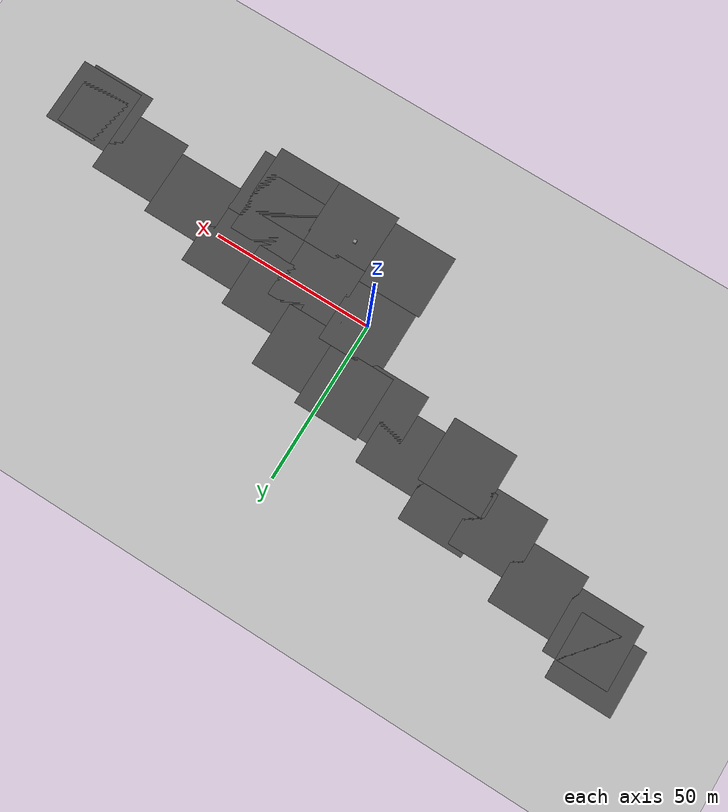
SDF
<sdf version="1.6">
 <world name="timpajdsparse">
  <light name="sun" type="directional">
   <pose>0 0 10 0 -0 0</pose>
   <diffuse>0.8 0.8 0.8 1</diffuse>
   <specular>0.2 0.2 0.2 1</specular>
   <attenuation>
    <range>1000</range>
    <constant>0.9</constant>
    <linear>0.01</linear>
    <quadratic>0.001</quadratic>
   </attenuation>
   <direction>-0.5 0.1 -0.9</direction>
  </light>
  <model name="apriltag">
   <static>0</static>
   <link name="link">
    <inertial>
     <mass>20</mass>
     <inertia><ixx>1</ixx><ixy>0</ixy><ixz>0</ixz><iyy>1</iyy><iyz>0</iyz><izz>1</izz></inertia>
    </inertial>
    <collision name="collision">
     <geometry><box><size>0.3 0.3 0.01</size></box></geometry>
     <surface><friction><ode><mu>100</mu><mu2>50</mu2></ode></friction></surface>
    </collision>
    <visual name="visual">
     <cast_shadows>0</cast_shadows>
     <geometry><box><size>0.3 0.3 0.01</size></box></geometry>
     <material><script><name>AprilTag/Image</name><uri>__default__</uri></script></material>
    </visual>
   </link>
   <pose>7 3 0.055 0 -0 0</pose>
  </model>
  <model name="ground_plane">
   <static>1</static>
   <link name="link">
    <collision name="collision">
     <geometry><plane><normal>0 0 1</normal><size>100 100</size></plane></geometry>
     <surface><friction><ode><mu>100</mu><mu2>50</mu2></ode></friction></surface>
    </collision>
    <visual name="visual">
     <cast_shadows>0</cast_shadows>
     <geometry><plane><normal>0 0 1</normal><size>100 100</size></plane></geometry>
     <material>
      <script><uri>file://media/materials/scripts/gazebo.material</uri><name>Gazebo/Grey</name></script>
     </material>
    </visual>
   </link>
  </model>
  <model name="asphalt_plane">
   <static>1</static>
   <link name="link">
    <collision name="collision"><geometry><box><size>20 20 0.1</size></box></geometry></collision>
    <visual name="visual">
     <cast_shadows>0</cast_shadows>
     <geometry><box><size>20 20 0.1</size></box></geometry>
     <material>
      <script>
       <uri>model://asphalt_plane/materials/scripts</uri>
       <uri>model://asphalt_plane/materials/textures</uri>
       <name>vrc/asphalt</name>
      </script>
     </material>
    </visual>
   </link>
  </model>
  <physics name="default_physics" default="0" type="ode">
   <ode>
    <solver>
     <type>quick</type>
     <iters>10</iters>
     <sor>1.3</sor>
     <use_dynamic_moi_rescaling>0</use_dynamic_moi_rescaling>
    </solver>
    <constraints>
     <cfm>0</cfm>
     <erp>0.2</erp>
     <contact_max_correcting_vel>100</contact_max_correcting_vel>
     <contact_surface_layer>0.001</contact_surface_layer>
    </constraints>
   </ode>
   <max_step_size>0.002</max_step_size>
   <real_time_factor>1</real_time_factor>
   <real_time_update_rate>500</real_time_update_rate>
  </physics>
  <scene><ambient>0.4 0.4 0.4 1</ambient><background>0.7 0.7 0.7 1</background><shadows>1</shadows></scene>
  <spherical_coordinates>
   <surface_model>EARTH_WGS84</surface_model>
   <latitude_deg>0</latitude_deg>
   <longitude_deg>0</longitude_deg>
   <elevation>0</elevation>
   <heading_deg>0</heading_deg>
  </spherical_coordinates>
  <model name="asphalt_plane_0">
   <static>1</static>
   <link name="link">
    <collision name="collision"><geometry><box><size>20 20 0.1</size></box></geometry></collision>
    <visual name="visual">
     <cast_shadows>0</cast_shadows>
     <geometry><box><size>20 20 0.1</size></box></geometry>
     <material>
      <script>
       <uri>model://asphalt_plane/materials/scripts</uri>
       <uri>model://asphalt_plane/materials/textures</uri>
       <name>vrc/asphalt</name>
      </script>
     </material>
    </visual>
   </link>
   <pose>-44 19 0 0 -0 0</pose>
  </model>
  <model name="asphalt_plane_0_0">
   <static>1</static>
   <link name="link">
    <collision name="collision"><geometry><box><size>20 20 0.1</size></box></geometry></collision>
    <visual name="visual">
     <cast_shadows>0</cast_shadows>
     <geometry><box><size>20 20 0.1</size></box></geometry>
     <material>
      <script>
       <uri>model://asphalt_plane/materials/scripts</uri>
       <uri>model://asphalt_plane/materials/textures</uri>
       <name>vrc/asphalt</name>
      </script>
     </material>
    </visual>
   </link>
   <pose>-96 40.5064 0 0 -0 0</pose>
  </model>
  <model name="asphalt_plane_1">
   <static>1</static>
   <link name="link">
    <collision name="collision"><geometry><box><size>20 20 0.1</size></box></geometry></collision>
    <visual name="visual">
     <cast_shadows>0</cast_shadows>
     <geometry><box><size>20 20 0.1</size></box></geometry>
     <material>
      <script>
       <uri>model://asphalt_plane/materials/scripts</uri>
       <uri>model://asphalt_plane/materials/textures</uri>
       <name>vrc/asphalt</name>
      </script>
     </material>
    </visual>
   </link>
   <pose>-100 46 0 0 -0 0</pose>
  </model>
  <model name="asphalt_plane_2">
   <static>1</static>
   <link name="link">
    <collision name="collision"><geometry><box><size>20 20 0.1</size></box></geometry></collision>
    <visual name="visual">
     <cast_shadows>0</cast_shadows>
     <geometry><box><size>20 20 0.1</size></box></geometry>
     <material>
      <script>
       <uri>model://asphalt_plane/materials/scripts</uri>
       <uri>model://asphalt_plane/materials/textures</uri>
       <name>vrc/asphalt</name>
      </script>
     </material>
    </visual>
   </link>
   <pose>-4 19 0 0 -0 0</pose>
  </model>
  <model name="asphalt_plane_3">
   <static>1</static>
   <link name="link">
    <collision name="collision"><geometry><box><size>20 20 0.1</size></box></geometry></collision>
    <visual name="visual">
     <cast_shadows>0</cast_shadows>
     <geometry><box><size>20 20 0.1</size></box></geometry>
     <material>
      <script>
       <uri>model://asphalt_plane/materials/scripts</uri>
       <uri>model://asphalt_plane/materials/textures</uri>
       <name>vrc/asphalt</name>
      </script>
     </material>
    </visual>
   </link>
   <pose>28.4839 6 0 0 -0 0</pose>
  </model>
  <model name="asphalt_plane_4">
   <static>1</static>
   <link name="link">
    <collision name="collision"><geometry><box><size>20 20 0.1</size></box></geometry></collision>
    <visual name="visual">
     <cast_shadows>0</cast_shadows>
     <geometry><box><size>20 20 0.1</size></box></geometry>
     <material>
      <script>
       <uri>model://asphalt_plane/materials/scripts</uri>
       <uri>model://asphalt_plane/materials/textures</uri>
       <name>vrc/asphalt</name>
      </script>
     </material>
    </visual>
   </link>
   <pose>102 -13.5911 0 0 -0 0</pose>
  </model>
  <model name="asphalt_plane_5">
   <static>1</static>
   <link name="link">
    <collision name="collision"><geometry><box><size>20 20 0.1</size></box></geometry></collision>
    <visual name="visual">
     <cast_shadows>0</cast_shadows>
     <geometry><box><size>20 20 0.1</size></box></geometry>
     <material>
      <script>
       <uri>model://asphalt_plane/materials/scripts</uri>
       <uri>model://asphalt_plane/materials/textures</uri>
       <name>vrc/asphalt</name>
      </script>
     </material>
    </visual>
   </link>
   <pose>98.5364 -14.4762 0 0 -0 0</pose>
  </model>
  <model name="unit_box_1">
   <pose>15.9999 -19 0.550001 5e-06 1e-06 -9.1e-05</pose>
   <link name="link">
    <inertial>
     <mass>1</mass>
     <inertia>
      <ixx>0.166667</ixx>
      <ixy>0</ixy>
      <ixz>0</ixz>
      <iyy>0.166667</iyy>
      <iyz>0</iyz>
      <izz>0.166667</izz>
     </inertia>
    </inertial>
    <collision name="collision"><geometry><box><size>1 1 1</size></box></geometry></collision>
    <visual name="visual">
     <geometry><box><size>1 1 1</size></box></geometry>
     <material>
      <script><name>Gazebo/Grey</name><uri>file://media/materials/scripts/gazebo.material</uri></script>
     </material>
    </visual>
   </link>
  </model>
  <model name="asphalt_plane_6">
   <static>1</static>
   <link name="link">
    <collision name="collision"><geometry><box><size>20 20 0.1</size></box></geometry></collision>
    <visual name="visual">
     <cast_shadows>0</cast_shadows>
     <geometry><box><size>20 20 0.1</size></box></geometry>
     <material>
      <script>
       <uri>model://asphalt_plane/materials/scripts</uri>
       <uri>model://asphalt_plane/materials/textures</uri>
       <name>vrc/asphalt</name>
      </script>
     </material>
    </visual>
   </link>
   <pose>-77 37 0 0 -0 0</pose>
  </model>
  <model name="asphalt_plane_0_1">
   <static>1</static>
   <link name="link">
    <collision name="collision"><geometry><box><size>20 20 0.1</size></box></geometry></collision>
    <visual name="visual">
     <cast_shadows>0</cast_shadows>
     <geometry><box><size>20 20 0.1</size></box></geometry>
     <material>
      <script>
       <uri>model://asphalt_plane/materials/scripts</uri>
       <uri>model://asphalt_plane/materials/textures</uri>
       <name>vrc/asphalt</name>
      </script>
     </material>
    </visual>
   </link>
   <pose>-60 29.5676 0 0 -0 0</pose>
  </model>
  <model name="asphalt_plane_1_0">
   <static>1</static>
   <link name="link">
    <collision name="collision"><geometry><box><size>20 20 0.1</size></box></geometry></collision>
    <visual name="visual">
     <cast_shadows>0</cast_shadows>
     <geometry><box><size>20 20 0.1</size></box></geometry>
     <material>
      <script>
       <uri>model://asphalt_plane/materials/scripts</uri>
       <uri>model://asphalt_plane/materials/textures</uri>
       <name>vrc/asphalt</name>
      </script>
     </material>
    </visual>
   </link>
   <pose>-27 24 0 0 -0 0</pose>
  </model>
  <model name="asphalt_plane_2_0">
   <static>1</static>
   <link name="link">
    <collision name="collision"><geometry><box><size>20 20 0.1</size></box></geometry></collision>
    <visual name="visual">
     <cast_shadows>0</cast_shadows>
     <geometry><box><size>20 20 0.1</size></box></geometry>
     <material>
      <script>
       <uri>model://asphalt_plane/materials/scripts</uri>
       <uri>model://asphalt_plane/materials/textures</uri>
       <name>vrc/asphalt</name>
      </script>
     </material>
    </visual>
   </link>
   <pose>-45 31 0 0 -0 0</pose>
  </model>
  <model name="asphalt_plane_3_0">
   <static>1</static>
   <link name="link">
    <collision name="collision"><geometry><box><size>20 20 0.1</size></box></geometry></collision>
    <visual name="visual">
     <cast_shadows>0</cast_shadows>
     <geometry><box><size>20 20 0.1</size></box></geometry>
     <material>
      <script>
       <uri>model://asphalt_plane/materials/scripts</uri>
       <uri>model://asphalt_plane/materials/textures</uri>
       <name>vrc/asphalt</name>
      </script>
     </material>
    </visual>
   </link>
   <pose>-15 18 0 0 -0 0</pose>
  </model>
  <model name="asphalt_plane_4_0">
   <static>1</static>
   <link name="link">
    <collision name="collision"><geometry><box><size>20 20 0.1</size></box></geometry></collision>
    <visual name="visual">
     <cast_shadows>0</cast_shadows>
     <geometry><box><size>20 20 0.1</size></box></geometry>
     <material>
      <script>
       <uri>model://asphalt_plane/materials/scripts</uri>
       <uri>model://asphalt_plane/materials/textures</uri>
       <name>vrc/asphalt</name>
      </script>
     </material>
    </visual>
   </link>
   <pose>12 16 0 0 -0 0</pose>
  </model>
  <model name="asphalt_plane_5_0">
   <static>1</static>
   <link name="link">
    <collision name="collision"><geometry><box><size>20 20 0.1</size></box></geometry></collision>
    <visual name="visual">
     <cast_shadows>0</cast_shadows>
     <geometry><box><size>20 20 0.1</size></box></geometry>
     <material>
      <script>
       <uri>model://asphalt_plane/materials/scripts</uri>
       <uri>model://asphalt_plane/materials/textures</uri>
       <name>vrc/asphalt</name>
      </script>
     </material>
    </visual>
   </link>
   <pose>45 1.42978 0 0 -0 0</pose>
  </model>
  <model name="asphalt_plane_6_0">
   <static>1</static>
   <link name="link">
    <collision name="collision"><geometry><box><size>20 20 0.1</size></box></geometry></collision>
    <visual name="visual">
     <cast_shadows>0</cast_shadows>
     <geometry><box><size>20 20 0.1</size></box></geometry>
     <material>
      <script>
       <uri>model://asphalt_plane/materials/scripts</uri>
       <uri>model://asphalt_plane/materials/textures</uri>
       <name>vrc/asphalt</name>
      </script>
     </material>
    </visual>
   </link>
   <pose>62 -5 0 0 -0 0</pose>
  </model>
  <model name="asphalt_plane_7">
   <static>1</static>
   <link name="link">
    <collision name="collision"><geometry><box><size>20 20 0.1</size></box></geometry></collision>
    <visual name="visual">
     <cast_shadows>0</cast_shadows>
     <geometry><box><size>20 20 0.1</size></box></geometry>
     <material>
      <script>
       <uri>model://asphalt_plane/materials/scripts</uri>
       <uri>model://asphalt_plane/materials/textures</uri>
       <name>vrc/asphalt</name>
      </script>
     </material>
    </visual>
   </link>
   <pose>82 -8 0 0 -0 0</pose>
  </model>
  <gravity>0 0 -9.8066</gravity>
  <magnetic_field>6e-06 2.3e-05 -4.2e-05</magnetic_field>
  <atmosphere type="adiabatic"/>
  <model name="asphalt_plane_8">
   <static>1</static>
   <link name="link">
    <collision name="collision"><geometry><box><size>20 20 0.1</size></box></geometry></collision>
    <visual name="visual">
     <cast_shadows>0</cast_shadows>
     <geometry><box><size>20 20 0.1</size></box></geometry>
     <material>
      <script>
       <uri>model://asphalt_plane/materials/scripts</uri>
       <uri>model://asphalt_plane/materials/textures</uri>
       <name>vrc/asphalt</name>
      </script>
     </material>
    </visual>
   </link>
   <pose>18.9775 -3.17568 0 0 -0 0</pose>
  </model>
  <model name="asphalt_plane_9">
   <static>1</static>
   <link name="link">
    <collision name="collision"><geometry><box><size>20 20 0.1</size></box></geometry></collision>
    <visual name="visual">
     <cast_shadows>0</cast_shadows>
     <geometry><box><size>20 20 0.1</size></box></geometry>
     <material>
      <script>
       <uri>model://asphalt_plane/materials/scripts</uri>
       <uri>model://asphalt_plane/materials/textures</uri>
       <name>vrc/asphalt</name>
      </script>
     </material>
    </visual>
   </link>
   <pose>-0.935219 -19.8832 0 0 -0 0</pose>
  </model>
  <model name="asphalt_plane_10">
   <static>1</static>
   <link name="link">
    <collision name="collision"><geometry><box><size>20 20 0.1</size></box></geometry></collision>
    <visual name="visual">
     <cast_shadows>0</cast_shadows>
     <geometry><box><size>20 20 0.1</size></box></geometry>
     <material>
      <script>
       <uri>model://asphalt_plane/materials/scripts</uri>
       <uri>model://asphalt_plane/materials/textures</uri>
       <name>vrc/asphalt</name>
      </script>
     </material>
    </visual>
   </link>
   <pose>18.9651 -21.6975 0 0 -0 0</pose>
  </model>
  <model name="asphalt_plane_11">
   <static>1</static>
   <link name="link">
    <collision name="collision"><geometry><box><size>20 20 0.1</size></box></geometry></collision>
    <visual name="visual">
     <cast_shadows>0</cast_shadows>
     <geometry><box><size>20 20 0.1</size></box></geometry>
     <material>
      <script>
       <uri>model://asphalt_plane/materials/scripts</uri>
       <uri>model://asphalt_plane/materials/textures</uri>
       <name>vrc/asphalt</name>
      </script>
     </material>
    </visual>
   </link>
   <pose>38.3035 -13.8622 0 0 -0 0</pose>
  </model>
  <model name="asphalt_plane_12">
   <static>1</static>
   <link name="link">
    <collision name="collision"><geometry><box><size>20 20 0.1</size></box></geometry></collision>
    <visual name="visual">
     <cast_shadows>0</cast_shadows>
     <geometry><box><size>20 20 0.1</size></box></geometry>
     <material>
      <script>
       <uri>model://asphalt_plane/materials/scripts</uri>
       <uri>model://asphalt_plane/materials/textures</uri>
       <name>vrc/asphalt</name>
      </script>
     </material>
    </visual>
   </link>
   <pose>42.2319 -18.4226 0 0 -0 0</pose>
  </model>
  <model name="asphalt_plane_13">
   <static>1</static>
   <link name="link">
    <collision name="collision"><geometry><box><size>20 20 0.1</size></box></geometry></collision>
    <visual name="visual">
     <cast_shadows>0</cast_shadows>
     <geometry><box><size>20 20 0.1</size></box></geometry>
     <material>
      <script>
       <uri>model://asphalt_plane/materials/scripts</uri>
       <uri>model://asphalt_plane/materials/textures</uri>
       <name>vrc/asphalt</name>
      </script>
     </material>
    </visual>
   </link>
   <pose>38.629 -21.6704 0 0 -0 0</pose>
  </model>
 </world>
</sdf>
